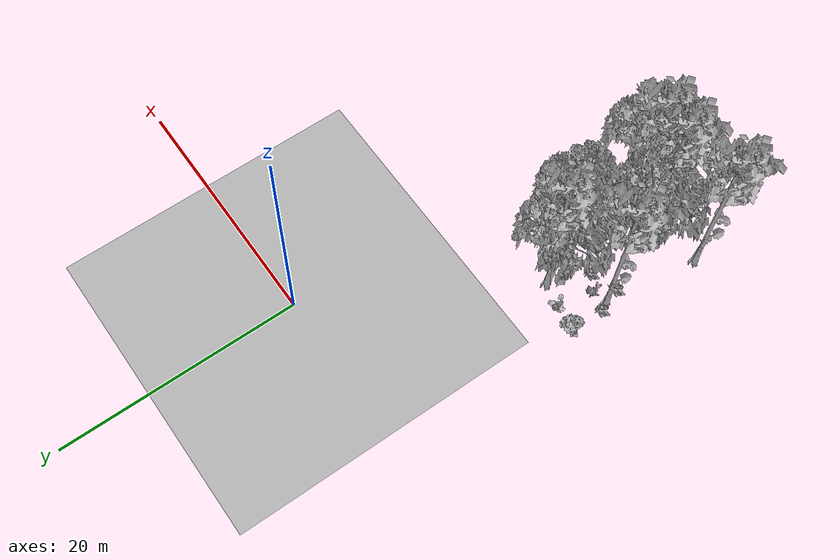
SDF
<sdf version="1.7">
 <world name="default">
  <model name="ground_plane">
   <static>1</static>
   <link name="link">
    <collision name="collision">
     <pose>-50 0 0 0 -0 0</pose>
     <geometry><plane><normal>0 0 1</normal><size>80 80</size></plane></geometry>
     <surface><contact><ode><min_depth>0.01</min_depth><max_vel>0</max_vel></ode></contact></surface>
    </collision>
    <visual name="grass">
     <cast_shadows>0</cast_shadows>
     <geometry>
      <mesh>
       <scale>0.46714285714285714 0.46714285714285714 0.1</scale>
       <uri>file://grass_plane/meshes/grass_plane.dae</uri>
      </mesh>
     </geometry>
    </visual>
   </link>
  </model>
  <model name="Tree 107">
   <static>1</static>
   <pose>-14.49966340150003 -27.320873575398295 0 1.57079 -0 0</pose>
   <link name="link">
    <collision name="collision">
     <geometry><mesh><scale>3.5 5 3.5</scale><uri>model://tree_9/meshes/tree_9.obj</uri></mesh></geometry>
    </collision>
    <visual name="visual">
     <geometry><mesh><scale>3.5 5 3.5</scale><uri>model://tree_9/meshes/tree_9.obj</uri></mesh></geometry>
    </visual>
   </link>
  </model>
  <model name="Tree 181">
   <static>1</static>
   <pose>-8.190840758084725 -26.411981688276338 0 1.57079 -0 0</pose>
   <link name="link">
    <collision name="collision">
     <geometry><mesh><scale>3.5 5 3.5</scale><uri>model://tree_9/meshes/tree_9.obj</uri></mesh></geometry>
    </collision>
    <visual name="visual">
     <geometry><mesh><scale>3.5 5 3.5</scale><uri>model://tree_9/meshes/tree_9.obj</uri></mesh></geometry>
    </visual>
   </link>
  </model>
  <model name="Tree 383">
   <static>1</static>
   <pose>-11.290514946903873 -24.172460544516355 0 1.57079 -0 0</pose>
   <link name="link">
    <collision name="collision">
     <geometry><mesh><scale>3.5 5 3.5</scale><uri>model://tree_2/meshes/tree_2.obj</uri></mesh></geometry>
    </collision>
    <visual name="visual">
     <geometry><mesh><scale>3.5 5 3.5</scale><uri>model://tree_2/meshes/tree_2.obj</uri></mesh></geometry>
    </visual>
   </link>
  </model>
  <model name="Tree 451">
   <static>1</static>
   <pose>-13.39819028886139 -19.428769411622532 0 1.57079 -0 0</pose>
   <link name="link">
    <collision name="collision">
     <geometry><mesh><scale>3.5 5 3.5</scale><uri>model://tree_9/meshes/tree_9.obj</uri></mesh></geometry>
    </collision>
    <visual name="visual">
     <geometry><mesh><scale>3.5 5 3.5</scale><uri>model://tree_9/meshes/tree_9.obj</uri></mesh></geometry>
    </visual>
   </link>
  </model>
  <model name="Tree 453">
   <static>1</static>
   <pose>-10.258486972362228 -26.411818736198533 0 1.57079 -0 0</pose>
   <link name="link">
    <collision name="collision">
     <geometry><mesh><scale>3.5 5 3.5</scale><uri>model://tree_9/meshes/tree_9.obj</uri></mesh></geometry>
    </collision>
    <visual name="visual">
     <geometry><mesh><scale>3.5 5 3.5</scale><uri>model://tree_9/meshes/tree_9.obj</uri></mesh></geometry>
    </visual>
   </link>
  </model>
  <model name="Tree 514">
   <static>1</static>
   <pose>-9.677108585425891 -16.978943237032624 0 1.57079 -0 0</pose>
   <link name="link">
    <collision name="collision">
     <geometry><mesh><scale>3.5 5 3.5</scale><uri>model://tree_2/meshes/tree_2.obj</uri></mesh></geometry>
    </collision>
    <visual name="visual">
     <geometry><mesh><scale>3.5 5 3.5</scale><uri>model://tree_2/meshes/tree_2.obj</uri></mesh></geometry>
    </visual>
   </link>
  </model>
  <model name="Tree 519">
   <static>1</static>
   <pose>-7.006084618759875 -27.31576191816191 0 1.57079 -0 0</pose>
   <link name="link">
    <collision name="collision">
     <geometry><mesh><scale>3.5 5 3.5</scale><uri>model://tree_2/meshes/tree_2.obj</uri></mesh></geometry>
    </collision>
    <visual name="visual">
     <geometry><mesh><scale>3.5 5 3.5</scale><uri>model://tree_2/meshes/tree_2.obj</uri></mesh></geometry>
    </visual>
   </link>
  </model>
  <model name="Tree 532">
   <static>1</static>
   <pose>-9.515047159507791 -16.772988672302375 0 1.57079 -0 0</pose>
   <link name="link">
    <collision name="collision">
     <geometry><mesh><scale>3.5 5 3.5</scale><uri>model://tree_9/meshes/tree_9.obj</uri></mesh></geometry>
    </collision>
    <visual name="visual">
     <geometry><mesh><scale>3.5 5 3.5</scale><uri>model://tree_9/meshes/tree_9.obj</uri></mesh></geometry>
    </visual>
   </link>
  </model>
  <model name="Tree 553">
   <static>1</static>
   <pose>-7.906590189563847 -20.14901983359288 0 1.57079 -0 0</pose>
   <link name="link">
    <collision name="collision">
     <geometry><mesh><scale>3.5 5 3.5</scale><uri>model://tree_2/meshes/tree_2.obj</uri></mesh></geometry>
    </collision>
    <visual name="visual">
     <geometry><mesh><scale>3.5 5 3.5</scale><uri>model://tree_2/meshes/tree_2.obj</uri></mesh></geometry>
    </visual>
   </link>
  </model>
  <model name="Bush 109">
   <static>1</static>
   <pose>-7.256996668046586 -22.10310948405266 0 1.57079 -0 0</pose>
   <link name="link">
    <collision name="collision">
     <geometry><mesh><scale>2 2 2</scale><uri>model://bush_2/meshes/bush_2.obj</uri></mesh></geometry>
     <surface><contact><collide_without_contact>false</collide_without_contact></contact></surface>
    </collision>
    <visual name="visual">
     <geometry><mesh><scale>2 2 2</scale><uri>model://bush_2/meshes/bush_2.obj</uri></mesh></geometry>
    </visual>
   </link>
  </model>
  <model name="Bush 147">
   <static>1</static>
   <pose>-7.638502609617891 -21.09878246268945 0 1.57079 -0 0</pose>
   <link name="link">
    <collision name="collision">
     <geometry><mesh><scale>2 2 2</scale><uri>model://bush_1/meshes/bush_1.obj</uri></mesh></geometry>
     <surface><contact><collide_without_contact>false</collide_without_contact></contact></surface>
    </collision>
    <visual name="visual">
     <geometry><mesh><scale>2 2 2</scale><uri>model://bush_1/meshes/bush_1.obj</uri></mesh></geometry>
    </visual>
   </link>
  </model>
  <model name="Bush 171">
   <static>1</static>
   <pose>-11.60385792007746 -15.919484670293215 0 1.57079 -0 0</pose>
   <link name="link">
    <collision name="collision">
     <geometry><mesh><scale>2 2 2</scale><uri>model://bush_0/meshes/bush_0.obj</uri></mesh></geometry>
     <surface><contact><collide_without_contact>false</collide_without_contact></contact></surface>
    </collision>
    <visual name="visual">
     <geometry><mesh><scale>2 2 2</scale><uri>model://bush_0/meshes/bush_0.obj</uri></mesh></geometry>
    </visual>
   </link>
  </model>
  <model name="Bush 188">
   <static>1</static>
   <pose>-13.797664406620324 -18.800013222326342 0 1.57079 -0 0</pose>
   <link name="link">
    <collision name="collision">
     <geometry><mesh><scale>2 2 2</scale><uri>model://bush_2/meshes/bush_2.obj</uri></mesh></geometry>
     <surface><contact><collide_without_contact>false</collide_without_contact></contact></surface>
    </collision>
    <visual name="visual">
     <geometry><mesh><scale>2 2 2</scale><uri>model://bush_2/meshes/bush_2.obj</uri></mesh></geometry>
    </visual>
   </link>
  </model>
  <model name="Bush 200">
   <static>1</static>
   <pose>-13.120614922590487 -20.80904965872385 0 1.57079 -0 0</pose>
   <link name="link">
    <collision name="collision">
     <geometry><mesh><scale>2 2 2</scale><uri>model://bush_2/meshes/bush_2.obj</uri></mesh></geometry>
     <surface><contact><collide_without_contact>false</collide_without_contact></contact></surface>
    </collision>
    <visual name="visual">
     <geometry><mesh><scale>2 2 2</scale><uri>model://bush_2/meshes/bush_2.obj</uri></mesh></geometry>
    </visual>
   </link>
  </model>
  <model name="Bush 206">
   <static>1</static>
   <pose>-7.019821949504777 -22.26989728845396 0 1.57079 -0 0</pose>
   <link name="link">
    <collision name="collision">
     <geometry><mesh><scale>2 2 2</scale><uri>model://bush_2/meshes/bush_2.obj</uri></mesh></geometry>
     <surface><contact><collide_without_contact>false</collide_without_contact></contact></surface>
    </collision>
    <visual name="visual">
     <geometry><mesh><scale>2 2 2</scale><uri>model://bush_2/meshes/bush_2.obj</uri></mesh></geometry>
    </visual>
   </link>
  </model>
  <model name="Bush 218">
   <static>1</static>
   <pose>-13.599327887919259 -15.9414846521282 0 1.57079 -0 0</pose>
   <link name="link">
    <collision name="collision">
     <geometry><mesh><scale>2 2 2</scale><uri>model://bush_1/meshes/bush_1.obj</uri></mesh></geometry>
     <surface><contact><collide_without_contact>false</collide_without_contact></contact></surface>
    </collision>
    <visual name="visual">
     <geometry><mesh><scale>2 2 2</scale><uri>model://bush_1/meshes/bush_1.obj</uri></mesh></geometry>
    </visual>
   </link>
  </model>
  <model name="Bush 246">
   <static>1</static>
   <pose>-10.964954463215108 -20.093722010359567 0 1.57079 -0 0</pose>
   <link name="link">
    <collision name="collision">
     <geometry><mesh><scale>2 2 2</scale><uri>model://bush_2/meshes/bush_2.obj</uri></mesh></geometry>
     <surface><contact><collide_without_contact>false</collide_without_contact></contact></surface>
    </collision>
    <visual name="visual">
     <geometry><mesh><scale>2 2 2</scale><uri>model://bush_2/meshes/bush_2.obj</uri></mesh></geometry>
    </visual>
   </link>
  </model>
  <model name="Bush 248">
   <static>1</static>
   <pose>-12.341708945108216 -18.691122350624553 0 1.57079 -0 0</pose>
   <link name="link">
    <collision name="collision">
     <geometry><mesh><scale>2 2 2</scale><uri>model://bush_5/meshes/bush_5.obj</uri></mesh></geometry>
     <surface><contact><collide_without_contact>false</collide_without_contact></contact></surface>
    </collision>
    <visual name="visual">
     <geometry><mesh><scale>2 2 2</scale><uri>model://bush_5/meshes/bush_5.obj</uri></mesh></geometry>
    </visual>
   </link>
  </model>
  <model name="Bush 256">
   <static>1</static>
   <pose>-8.447373946758248 -24.458272921265653 0 1.57079 -0 0</pose>
   <link name="link">
    <collision name="collision">
     <geometry><mesh><scale>2 2 2</scale><uri>model://bush_2/meshes/bush_2.obj</uri></mesh></geometry>
     <surface><contact><collide_without_contact>false</collide_without_contact></contact></surface>
    </collision>
    <visual name="visual">
     <geometry><mesh><scale>2 2 2</scale><uri>model://bush_2/meshes/bush_2.obj</uri></mesh></geometry>
    </visual>
   </link>
  </model>
  <model name="Bush 263">
   <static>1</static>
   <pose>-8.615756704329023 -21.410662944451857 0 1.57079 -0 0</pose>
   <link name="link">
    <collision name="collision">
     <geometry><mesh><scale>2 2 2</scale><uri>model://bush_2/meshes/bush_2.obj</uri></mesh></geometry>
     <surface><contact><collide_without_contact>false</collide_without_contact></contact></surface>
    </collision>
    <visual name="visual">
     <geometry><mesh><scale>2 2 2</scale><uri>model://bush_2/meshes/bush_2.obj</uri></mesh></geometry>
    </visual>
   </link>
  </model>
  <model name="Bush 317">
   <static>1</static>
   <pose>-8.046763246793748 -21.324783655560164 0 1.57079 -0 0</pose>
   <link name="link">
    <collision name="collision">
     <geometry><mesh><scale>2 2 2</scale><uri>model://bush_0/meshes/bush_0.obj</uri></mesh></geometry>
     <surface><contact><collide_without_contact>false</collide_without_contact></contact></surface>
    </collision>
    <visual name="visual">
     <geometry><mesh><scale>2 2 2</scale><uri>model://bush_0/meshes/bush_0.obj</uri></mesh></geometry>
    </visual>
   </link>
  </model>
  <model name="Bush 343">
   <static>1</static>
   <pose>-11.199056634605213 -24.0624317648202 0 1.57079 -0 0</pose>
   <link name="link">
    <collision name="collision">
     <geometry><mesh><scale>2 2 2</scale><uri>model://bush_5/meshes/bush_5.obj</uri></mesh></geometry>
     <surface><contact><collide_without_contact>false</collide_without_contact></contact></surface>
    </collision>
    <visual name="visual">
     <geometry><mesh><scale>2 2 2</scale><uri>model://bush_5/meshes/bush_5.obj</uri></mesh></geometry>
    </visual>
   </link>
  </model>
  <model name="Bush 619">
   <static>1</static>
   <pose>-6.858789218324031 -27.608682155083528 0 1.57079 -0 0</pose>
   <link name="link">
    <collision name="collision">
     <geometry><mesh><scale>2 2 2</scale><uri>model://bush_2/meshes/bush_2.obj</uri></mesh></geometry>
     <surface><contact><collide_without_contact>false</collide_without_contact></contact></surface>
    </collision>
    <visual name="visual">
     <geometry><mesh><scale>2 2 2</scale><uri>model://bush_2/meshes/bush_2.obj</uri></mesh></geometry>
    </visual>
   </link>
  </model>
 </world>
</sdf>
